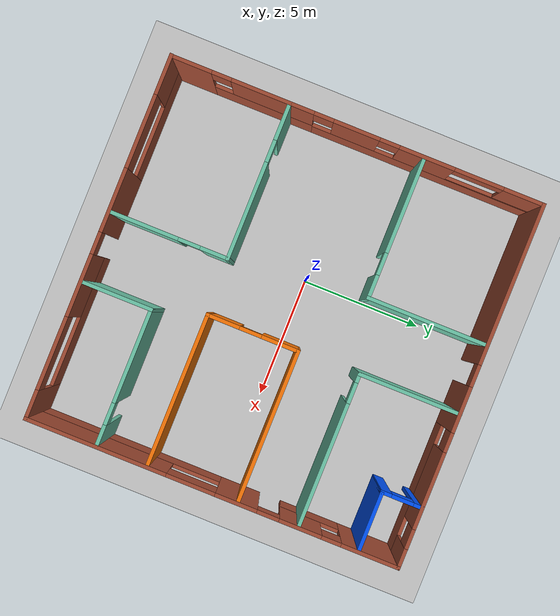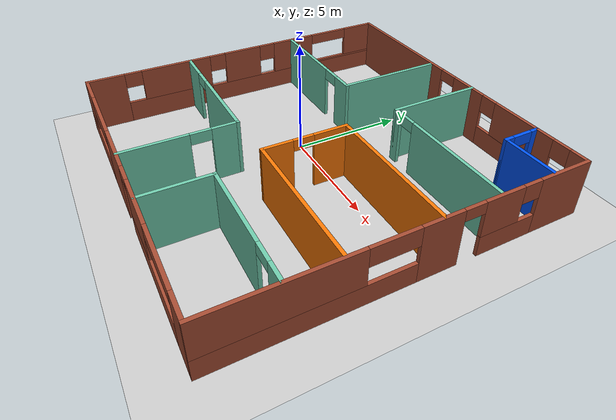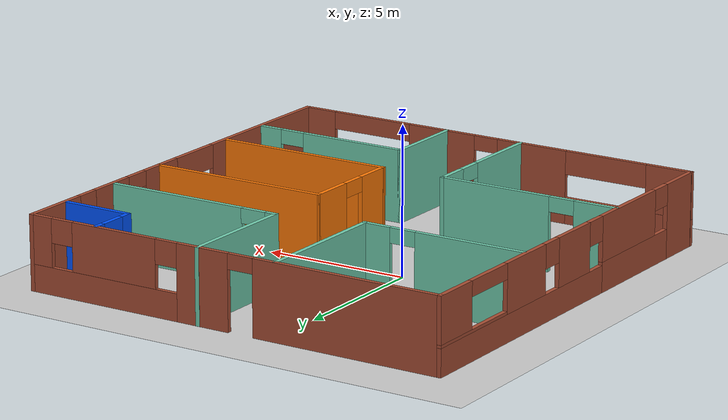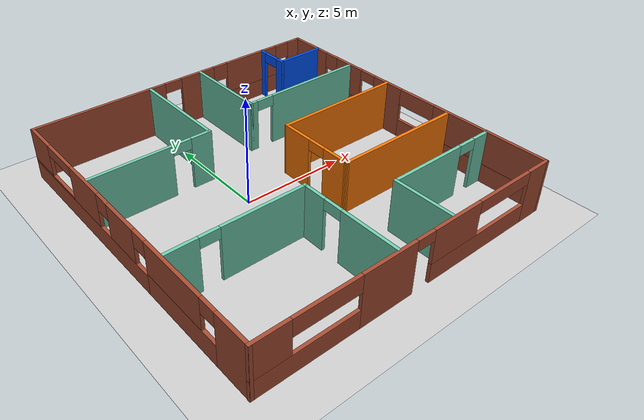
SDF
<sdf version="1.6">
 <world name="default">
  <model name="ground_plane">
   <static>1</static>
   <link name="link">
    <collision name="collision">
     <geometry><plane><normal>0 0 1</normal><size>100 100</size></plane></geometry>
     <surface><friction><ode><mu>100</mu><mu2>50</mu2></ode></friction></surface>
    </collision>
    <visual name="visual">
     <cast_shadows>0</cast_shadows>
     <geometry><plane><normal>0 0 1</normal><size>100 100</size></plane></geometry>
     <material>
      <script><uri>file://media/materials/scripts/gazebo.material</uri><name>Gazebo/Grey</name></script>
     </material>
    </visual>
   </link>
  </model>
  <model name="brickhouse">
   <pose>1.50992 -0.314874 0 0 -0 0</pose>
   <link name="Wall_18">
    <pose>-0.025 7.62202 0 0 -0 0</pose>
    <visual name="Wall_18_Visual_0">
     <pose>-4.1928 0 1.25 0 -0 0</pose>
     <geometry><box><size>6.6144 0.15 2.5</size></box></geometry>
     <material>
      <script><uri>file://media/materials/scripts/gazebo.material</uri><name>Gazebo/Bricks</name></script>
      <ambient>0.666667 0 0 1</ambient>
     </material>
     <meta><layer>0</layer></meta>
    </visual>
    <collision name="Wall_18_Collision_0">
     <geometry><box><size>6.6144 0.15 2.5</size></box></geometry>
     <pose>-4.1928 0 1.25 0 -0 0</pose>
    </collision>
    <visual name="Wall_18_Visual_1">
     <pose>0.9547 0 1.25 0 -0 0</pose>
     <geometry><box><size>1.8806 0.15 2.5</size></box></geometry>
     <material>
      <script><uri>file://media/materials/scripts/gazebo.material</uri><name>Gazebo/Bricks</name></script>
      <ambient>0.666667 0 0 1</ambient>
     </material>
     <meta><layer>0</layer></meta>
    </visual>
    <collision name="Wall_18_Collision_1">
     <geometry><box><size>1.8806 0.15 2.5</size></box></geometry>
     <pose>0.9547 0 1.25 0 -0 0</pose>
    </collision>
    <visual name="Wall_18_Visual_2">
     <pose>4.6975 0 0.45 0 -0 0</pose>
     <geometry><box><size>5.605 0.15 0.9</size></box></geometry>
     <material>
      <script><uri>file://media/materials/scripts/gazebo.material</uri><name>Gazebo/Bricks</name></script>
      <ambient>0.666667 0 0 1</ambient>
     </material>
     <meta><layer>0</layer></meta>
    </visual>
    <collision name="Wall_18_Collision_2">
     <geometry><box><size>5.605 0.15 0.9</size></box></geometry>
     <pose>4.6975 0 0.45 0 -0 0</pose>
    </collision>
    <visual name="Wall_18_Visual_3">
     <pose>4.27 0 1.7 0 -0 0</pose>
     <geometry><box><size>3.15 0.15 1.6</size></box></geometry>
     <material>
      <script><uri>file://media/materials/scripts/gazebo.material</uri><name>Gazebo/Bricks</name></script>
      <ambient>0.666667 0 0 1</ambient>
     </material>
     <meta><layer>0</layer></meta>
    </visual>
    <collision name="Wall_18_Collision_3">
     <geometry><box><size>3.15 0.15 1.6</size></box></geometry>
     <pose>4.27 0 1.7 0 -0 0</pose>
    </collision>
    <visual name="Wall_18_Visual_4">
     <pose>7.0725 0 1.7 0 -0 0</pose>
     <geometry><box><size>0.855 0.15 1.6</size></box></geometry>
     <material>
      <script><uri>file://media/materials/scripts/gazebo.material</uri><name>Gazebo/Bricks</name></script>
      <ambient>0.666667 0 0 1</ambient>
     </material>
     <meta><layer>0</layer></meta>
    </visual>
    <collision name="Wall_18_Collision_4">
     <geometry><box><size>0.855 0.15 1.6</size></box></geometry>
     <pose>7.0725 0 1.7 0 -0 0</pose>
    </collision>
    <visual name="Wall_18_Visual_5">
     <pose>2.295 0 2.1 0 -0 0</pose>
     <geometry><box><size>0.8 0.15 0.8</size></box></geometry>
     <material>
      <script><uri>file://media/materials/scripts/gazebo.material</uri><name>Gazebo/Bricks</name></script>
      <ambient>0.666667 0 0 1</ambient>
     </material>
     <meta><layer>0</layer></meta>
    </visual>
    <collision name="Wall_18_Collision_5">
     <geometry><box><size>0.8 0.15 0.8</size></box></geometry>
     <pose>2.295 0 2.1 0 -0 0</pose>
    </collision>
    <visual name="Wall_18_Visual_6">
     <pose>6.245 0 2.1 0 -0 0</pose>
     <geometry><box><size>0.8 0.15 0.8</size></box></geometry>
     <material>
      <script><uri>file://media/materials/scripts/gazebo.material</uri><name>Gazebo/Bricks</name></script>
      <ambient>0.666667 0 0 1</ambient>
     </material>
     <meta><layer>0</layer></meta>
    </visual>
    <collision name="Wall_18_Collision_6">
     <geometry><box><size>0.8 0.15 0.8</size></box></geometry>
     <pose>6.245 0 2.1 0 -0 0</pose>
    </collision>
    <visual name="Wall_18_Visual_7">
     <pose>-0.4356 0 2.25 0 -0 0</pose>
     <geometry><box><size>0.9 0.15 0.5</size></box></geometry>
     <material>
      <script><uri>file://media/materials/scripts/gazebo.material</uri><name>Gazebo/Bricks</name></script>
      <ambient>0.666667 0 0 1</ambient>
     </material>
     <meta><layer>0</layer></meta>
    </visual>
    <collision name="Wall_18_Collision_7">
     <geometry><box><size>0.9 0.15 0.5</size></box></geometry>
     <pose>-0.4356 0 2.25 0 -0 0</pose>
    </collision>
   </link>
   <link name="Wall_19">
    <pose>7.4 -0.001479 0 0 0 -1.5708</pose>
    <visual name="Wall_19_Visual_0">
     <pose>-6.48752 0 1.25 0 -0 0</pose>
     <geometry><box><size>2.42204 0.15 2.5</size></box></geometry>
     <material>
      <script><uri>file://media/materials/scripts/gazebo.material</uri><name>Gazebo/Bricks</name></script>
      <ambient>0.666667 0 0 1</ambient>
     </material>
     <meta><layer>0</layer></meta>
    </visual>
    <collision name="Wall_19_Collision_0">
     <geometry><box><size>2.42204 0.15 2.5</size></box></geometry>
     <pose>-6.48752 0 1.25 0 -0 0</pose>
    </collision>
    <visual name="Wall_19_Visual_1">
     <pose>-0.9765 0 1.25 0 -0 0</pose>
     <geometry><box><size>1.72 0.15 2.5</size></box></geometry>
     <material>
      <script><uri>file://media/materials/scripts/gazebo.material</uri><name>Gazebo/Bricks</name></script>
      <ambient>0.666667 0 0 1</ambient>
     </material>
     <meta><layer>0</layer></meta>
    </visual>
    <collision name="Wall_19_Collision_1">
     <geometry><box><size>1.72 0.15 2.5</size></box></geometry>
     <pose>-0.9765 0 1.25 0 -0 0</pose>
    </collision>
    <visual name="Wall_19_Visual_2">
     <pose>-4.0065 0 0.45 0 -0 0</pose>
     <geometry><box><size>2.54 0.15 0.9</size></box></geometry>
     <material>
      <script><uri>file://media/materials/scripts/gazebo.material</uri><name>Gazebo/Bricks</name></script>
      <ambient>0.666667 0 0 1</ambient>
     </material>
     <meta><layer>0</layer></meta>
    </visual>
    <collision name="Wall_19_Collision_2">
     <geometry><box><size>2.54 0.15 0.9</size></box></geometry>
     <pose>-4.0065 0 0.45 0 -0 0</pose>
    </collision>
    <visual name="Wall_19_Visual_3">
     <pose>3.79102 0 0.45 0 -0 0</pose>
     <geometry><box><size>7.81504 0.15 0.9</size></box></geometry>
     <material>
      <script><uri>file://media/materials/scripts/gazebo.material</uri><name>Gazebo/Bricks</name></script>
      <ambient>0.666667 0 0 1</ambient>
     </material>
     <meta><layer>0</layer></meta>
    </visual>
    <collision name="Wall_19_Collision_3">
     <geometry><box><size>7.81504 0.15 0.9</size></box></geometry>
     <pose>3.79102 0 0.45 0 -0 0</pose>
    </collision>
    <visual name="Wall_19_Visual_4">
     <pose>-3.6065 0 1.7 0 -0 0</pose>
     <geometry><box><size>1.74 0.15 1.6</size></box></geometry>
     <material>
      <script><uri>file://media/materials/scripts/gazebo.material</uri><name>Gazebo/Bricks</name></script>
      <ambient>0.666667 0 0 1</ambient>
     </material>
     <meta><layer>0</layer></meta>
    </visual>
    <collision name="Wall_19_Collision_4">
     <geometry><box><size>1.74 0.15 1.6</size></box></geometry>
     <pose>-3.6065 0 1.7 0 -0 0</pose>
    </collision>
    <visual name="Wall_19_Visual_5">
     <pose>-3.6065 0 1.7 0 -0 0</pose>
     <geometry><box><size>1.74 0.15 1.6</size></box></geometry>
     <material>
      <script><uri>file://media/materials/scripts/gazebo.material</uri><name>Gazebo/Bricks</name></script>
      <ambient>0.666667 0 0 1</ambient>
     </material>
     <meta><layer>0</layer></meta>
    </visual>
    <collision name="Wall_19_Collision_5">
     <geometry><box><size>1.74 0.15 1.6</size></box></geometry>
     <pose>-3.6065 0 1.7 0 -0 0</pose>
    </collision>
    <visual name="Wall_19_Visual_6">
     <pose>4.79102 0 1.7 0 -0 0</pose>
     <geometry><box><size>5.81504 0.15 1.6</size></box></geometry>
     <material>
      <script><uri>file://media/materials/scripts/gazebo.material</uri><name>Gazebo/Bricks</name></script>
      <ambient>0.666667 0 0 1</ambient>
     </material>
     <meta><layer>0</layer></meta>
    </visual>
    <collision name="Wall_19_Collision_6">
     <geometry><box><size>5.81504 0.15 1.6</size></box></geometry>
     <pose>4.79102 0 1.7 0 -0 0</pose>
    </collision>
    <visual name="Wall_19_Visual_7">
     <pose>-4.8765 0 2.1 0 -0 0</pose>
     <geometry><box><size>0.8 0.15 0.8</size></box></geometry>
     <material>
      <script><uri>file://media/materials/scripts/gazebo.material</uri><name>Gazebo/Bricks</name></script>
      <ambient>0.666667 0 0 1</ambient>
     </material>
     <meta><layer>0</layer></meta>
    </visual>
    <collision name="Wall_19_Collision_7">
     <geometry><box><size>0.8 0.15 0.8</size></box></geometry>
     <pose>-4.8765 0 2.1 0 -0 0</pose>
    </collision>
    <visual name="Wall_19_Visual_8">
     <pose>0.8835 0 2.1 0 -0 0</pose>
     <geometry><box><size>2 0.15 0.8</size></box></geometry>
     <material>
      <script><uri>file://media/materials/scripts/gazebo.material</uri><name>Gazebo/Bricks</name></script>
      <ambient>0.666667 0 0 1</ambient>
     </material>
     <meta><layer>0</layer></meta>
    </visual>
    <collision name="Wall_19_Collision_8">
     <geometry><box><size>2 0.15 0.8</size></box></geometry>
     <pose>0.8835 0 2.1 0 -0 0</pose>
    </collision>
    <visual name="Wall_19_Visual_9">
     <pose>-2.2865 0 2.25 0 -0 0</pose>
     <geometry><box><size>0.9 0.15 0.5</size></box></geometry>
     <material>
      <script><uri>file://media/materials/scripts/gazebo.material</uri><name>Gazebo/Bricks</name></script>
      <ambient>0.666667 0 0 1</ambient>
     </material>
     <meta><layer>0</layer></meta>
    </visual>
    <collision name="Wall_19_Collision_9">
     <geometry><box><size>0.9 0.15 0.5</size></box></geometry>
     <pose>-2.2865 0 2.25 0 -0 0</pose>
    </collision>
    <visual name="Wall_19_Visual_10">
     <pose>-2.2865 0 2.25 0 -0 0</pose>
     <geometry><box><size>0.9 0.15 0.5</size></box></geometry>
     <material>
      <script><uri>file://media/materials/scripts/gazebo.material</uri><name>Gazebo/Bricks</name></script>
      <ambient>0.666667 0 0 1</ambient>
     </material>
     <meta><layer>0</layer></meta>
    </visual>
    <collision name="Wall_19_Collision_10">
     <geometry><box><size>0.9 0.15 0.5</size></box></geometry>
     <pose>-2.2865 0 2.25 0 -0 0</pose>
    </collision>
   </link>
   <link name="Wall_20">
    <pose>-0.035 -7.62498 0 0 -0 3.14159</pose>
    <visual name="Wall_20_Visual_0">
     <pose>-6.8775 0 1.25 0 -0 0</pose>
     <geometry><box><size>1.245 0.15 2.5</size></box></geometry>
     <material>
      <script><uri>file://media/materials/scripts/gazebo.material</uri><name>Gazebo/Bricks</name></script>
      <ambient>0.666667 0 0 1</ambient>
     </material>
     <meta><layer>0</layer></meta>
    </visual>
    <collision name="Wall_20_Collision_0">
     <geometry><box><size>1.245 0.15 2.5</size></box></geometry>
     <pose>-6.8775 0 1.25 0 -0 0</pose>
    </collision>
    <visual name="Wall_20_Visual_1">
     <pose>1.515 0 1.25 0 -0 0</pose>
     <geometry><box><size>2.62 0.15 2.5</size></box></geometry>
     <material>
      <script><uri>file://media/materials/scripts/gazebo.material</uri><name>Gazebo/Bricks</name></script>
      <ambient>0.666667 0 0 1</ambient>
     </material>
     <meta><layer>0</layer></meta>
    </visual>
    <collision name="Wall_20_Collision_1">
     <geometry><box><size>2.62 0.15 2.5</size></box></geometry>
     <pose>1.515 0 1.25 0 -0 0</pose>
    </collision>
    <visual name="Wall_20_Visual_2">
     <pose>-3.475 0 0.45 0 -0 0</pose>
     <geometry><box><size>5.56 0.15 0.9</size></box></geometry>
     <material>
      <script><uri>file://media/materials/scripts/gazebo.material</uri><name>Gazebo/Bricks</name></script>
      <ambient>0.666667 0 0 1</ambient>
     </material>
     <meta><layer>0</layer></meta>
    </visual>
    <collision name="Wall_20_Collision_2">
     <geometry><box><size>5.56 0.15 0.9</size></box></geometry>
     <pose>-3.475 0 0.45 0 -0 0</pose>
    </collision>
    <visual name="Wall_20_Visual_3">
     <pose>5.1625 0 0.45 0 -0 0</pose>
     <geometry><box><size>4.675 0.15 0.9</size></box></geometry>
     <material>
      <script><uri>file://media/materials/scripts/gazebo.material</uri><name>Gazebo/Bricks</name></script>
      <ambient>0.666667 0 0 1</ambient>
     </material>
     <meta><layer>0</layer></meta>
    </visual>
    <collision name="Wall_20_Collision_3">
     <geometry><box><size>4.675 0.15 0.9</size></box></geometry>
     <pose>5.1625 0 0.45 0 -0 0</pose>
    </collision>
    <visual name="Wall_20_Visual_4">
     <pose>-1.975 0 1.7 0 -0 0</pose>
     <geometry><box><size>2.56 0.15 1.6</size></box></geometry>
     <material>
      <script><uri>file://media/materials/scripts/gazebo.material</uri><name>Gazebo/Bricks</name></script>
      <ambient>0.666667 0 0 1</ambient>
     </material>
     <meta><layer>0</layer></meta>
    </visual>
    <collision name="Wall_20_Collision_4">
     <geometry><box><size>2.56 0.15 1.6</size></box></geometry>
     <pose>-1.975 0 1.7 0 -0 0</pose>
    </collision>
    <visual name="Wall_20_Visual_5">
     <pose>-1.975 0 1.7 0 -0 0</pose>
     <geometry><box><size>2.56 0.15 1.6</size></box></geometry>
     <material>
      <script><uri>file://media/materials/scripts/gazebo.material</uri><name>Gazebo/Bricks</name></script>
      <ambient>0.666667 0 0 1</ambient>
     </material>
     <meta><layer>0</layer></meta>
    </visual>
    <collision name="Wall_20_Collision_5">
     <geometry><box><size>2.56 0.15 1.6</size></box></geometry>
     <pose>-1.975 0 1.7 0 -0 0</pose>
    </collision>
    <visual name="Wall_20_Visual_6">
     <pose>6.6625 0 1.7 0 -0 0</pose>
     <geometry><box><size>1.675 0.15 1.6</size></box></geometry>
     <material>
      <script><uri>file://media/materials/scripts/gazebo.material</uri><name>Gazebo/Bricks</name></script>
      <ambient>0.666667 0 0 1</ambient>
     </material>
     <meta><layer>0</layer></meta>
    </visual>
    <collision name="Wall_20_Collision_6">
     <geometry><box><size>1.675 0.15 1.6</size></box></geometry>
     <pose>6.6625 0 1.7 0 -0 0</pose>
    </collision>
    <visual name="Wall_20_Visual_7">
     <pose>4.325 0 2.1 0 -0 0</pose>
     <geometry><box><size>3 0.15 0.8</size></box></geometry>
     <material>
      <script><uri>file://media/materials/scripts/gazebo.material</uri><name>Gazebo/Bricks</name></script>
      <ambient>0.666667 0 0 1</ambient>
     </material>
     <meta><layer>0</layer></meta>
    </visual>
    <collision name="Wall_20_Collision_7">
     <geometry><box><size>3 0.15 0.8</size></box></geometry>
     <pose>4.325 0 2.1 0 -0 0</pose>
    </collision>
    <visual name="Wall_20_Visual_8">
     <pose>-4.755 0 2.2 0 -0 0</pose>
     <geometry><box><size>3 0.15 0.6</size></box></geometry>
     <material>
      <script><uri>file://media/materials/scripts/gazebo.material</uri><name>Gazebo/Bricks</name></script>
      <ambient>0.666667 0 0 1</ambient>
     </material>
     <meta><layer>0</layer></meta>
    </visual>
    <collision name="Wall_20_Collision_8">
     <geometry><box><size>3 0.15 0.6</size></box></geometry>
     <pose>-4.755 0 2.2 0 -0 0</pose>
    </collision>
    <visual name="Wall_20_Visual_9">
     <pose>-0.245 0 2.25 0 -0 0</pose>
     <geometry><box><size>0.9 0.15 0.5</size></box></geometry>
     <material>
      <script><uri>file://media/materials/scripts/gazebo.material</uri><name>Gazebo/Bricks</name></script>
      <ambient>0.666667 0 0 1</ambient>
     </material>
     <meta><layer>0</layer></meta>
    </visual>
    <collision name="Wall_20_Collision_9">
     <geometry><box><size>0.9 0.15 0.5</size></box></geometry>
     <pose>-0.245 0 2.25 0 -0 0</pose>
    </collision>
    <visual name="Wall_20_Visual_10">
     <pose>-0.245 0 2.25 0 -0 0</pose>
     <geometry><box><size>0.9 0.15 0.5</size></box></geometry>
     <material>
      <script><uri>file://media/materials/scripts/gazebo.material</uri><name>Gazebo/Bricks</name></script>
      <ambient>0.666667 0 0 1</ambient>
     </material>
     <meta><layer>0</layer></meta>
    </visual>
    <collision name="Wall_20_Collision_10">
     <geometry><box><size>0.9 0.15 0.5</size></box></geometry>
     <pose>-0.245 0 2.25 0 -0 0</pose>
    </collision>
   </link>
   <link name="Wall_21">
    <pose>-7.45 -0.001479 0 0 -0 1.5708</pose>
    <visual name="Wall_21_Visual_0">
     <pose>-6.82602 0 1.25 0 -0 0</pose>
     <geometry><box><size>1.74504 0.15 2.5</size></box></geometry>
     <material>
      <script><uri>file://media/materials/scripts/gazebo.material</uri><name>Gazebo/Bricks</name></script>
      <ambient>0.666667 0 0 1</ambient>
     </material>
     <meta><layer>0</layer></meta>
    </visual>
    <collision name="Wall_21_Collision_0">
     <geometry><box><size>1.74504 0.15 2.5</size></box></geometry>
     <pose>-6.82602 0 1.25 0 -0 0</pose>
    </collision>
    <visual name="Wall_21_Visual_1">
     <pose>-3.8585 0 0.5 0 -0 0</pose>
     <geometry><box><size>4.19 0.15 1</size></box></geometry>
     <material>
      <script><uri>file://media/materials/scripts/gazebo.material</uri><name>Gazebo/Bricks</name></script>
      <ambient>0.666667 0 0 1</ambient>
     </material>
     <meta><layer>0</layer></meta>
    </visual>
    <collision name="Wall_21_Collision_1">
     <geometry><box><size>4.19 0.15 1</size></box></geometry>
     <pose>-3.8585 0 0.5 0 -0 0</pose>
    </collision>
    <visual name="Wall_21_Visual_2">
     <pose>2.96752 0 0.45 0 -0 0</pose>
     <geometry><box><size>9.46204 0.15 0.9</size></box></geometry>
     <material>
      <script><uri>file://media/materials/scripts/gazebo.material</uri><name>Gazebo/Bricks</name></script>
      <ambient>0.666667 0 0 1</ambient>
     </material>
     <meta><layer>0</layer></meta>
    </visual>
    <collision name="Wall_21_Collision_2">
     <geometry><box><size>9.46204 0.15 0.9</size></box></geometry>
     <pose>2.96752 0 0.45 0 -0 0</pose>
    </collision>
    <visual name="Wall_21_Visual_3">
     <pose>-0.0185 0 1.7 0 -0 0</pose>
     <geometry><box><size>1.89 0.15 1.6</size></box></geometry>
     <material>
      <script><uri>file://media/materials/scripts/gazebo.material</uri><name>Gazebo/Bricks</name></script>
      <ambient>0.666667 0 0 1</ambient>
     </material>
     <meta><layer>0</layer></meta>
    </visual>
    <collision name="Wall_21_Collision_3">
     <geometry><box><size>1.89 0.15 1.6</size></box></geometry>
     <pose>-0.0185 0 1.7 0 -0 0</pose>
    </collision>
    <visual name="Wall_21_Visual_4">
     <pose>2.8565 0 1.7 0 -0 0</pose>
     <geometry><box><size>2.26 0.15 1.6</size></box></geometry>
     <material>
      <script><uri>file://media/materials/scripts/gazebo.material</uri><name>Gazebo/Bricks</name></script>
      <ambient>0.666667 0 0 1</ambient>
     </material>
     <meta><layer>0</layer></meta>
    </visual>
    <collision name="Wall_21_Collision_4">
     <geometry><box><size>2.26 0.15 1.6</size></box></geometry>
     <pose>2.8565 0 1.7 0 -0 0</pose>
    </collision>
    <visual name="Wall_21_Visual_5">
     <pose>5.84252 0 0.95 0 -0 0</pose>
     <geometry><box><size>3.71204 0.15 0.1</size></box></geometry>
     <material>
      <script><uri>file://media/materials/scripts/gazebo.material</uri><name>Gazebo/Bricks</name></script>
      <ambient>0.666667 0 0 1</ambient>
     </material>
     <meta><layer>0</layer></meta>
    </visual>
    <collision name="Wall_21_Collision_5">
     <geometry><box><size>3.71204 0.15 0.1</size></box></geometry>
     <pose>5.84252 0 0.95 0 -0 0</pose>
    </collision>
    <visual name="Wall_21_Visual_6">
     <pose>6.84252 0 1.75 0 -0 0</pose>
     <geometry><box><size>1.71204 0.15 1.5</size></box></geometry>
     <material>
      <script><uri>file://media/materials/scripts/gazebo.material</uri><name>Gazebo/Bricks</name></script>
      <ambient>0.666667 0 0 1</ambient>
     </material>
     <meta><layer>0</layer></meta>
    </visual>
    <collision name="Wall_21_Collision_6">
     <geometry><box><size>1.71204 0.15 1.5</size></box></geometry>
     <pose>6.84252 0 1.75 0 -0 0</pose>
    </collision>
    <visual name="Wall_21_Visual_7">
     <pose>-3.4585 0 1.75 0 -0 0</pose>
     <geometry><box><size>3.39 0.15 1.5</size></box></geometry>
     <material>
      <script><uri>file://media/materials/scripts/gazebo.material</uri><name>Gazebo/Bricks</name></script>
      <ambient>0.666667 0 0 1</ambient>
     </material>
     <meta><layer>0</layer></meta>
    </visual>
    <collision name="Wall_21_Collision_7">
     <geometry><box><size>3.39 0.15 1.5</size></box></geometry>
     <pose>-3.4585 0 1.75 0 -0 0</pose>
    </collision>
    <visual name="Wall_21_Visual_8">
     <pose>-3.4585 0 1.75 0 -0 0</pose>
     <geometry><box><size>3.39 0.15 1.5</size></box></geometry>
     <material>
      <script><uri>file://media/materials/scripts/gazebo.material</uri><name>Gazebo/Bricks</name></script>
      <ambient>0.666667 0 0 1</ambient>
     </material>
     <meta><layer>0</layer></meta>
    </visual>
    <collision name="Wall_21_Collision_8">
     <geometry><box><size>3.39 0.15 1.5</size></box></geometry>
     <pose>-3.4585 0 1.75 0 -0 0</pose>
    </collision>
    <visual name="Wall_21_Visual_9">
     <pose>1.3265 0 2.1 0 -0 0</pose>
     <geometry><box><size>0.8 0.15 0.8</size></box></geometry>
     <material>
      <script><uri>file://media/materials/scripts/gazebo.material</uri><name>Gazebo/Bricks</name></script>
      <ambient>0.666667 0 0 1</ambient>
     </material>
     <meta><layer>0</layer></meta>
    </visual>
    <collision name="Wall_21_Collision_9">
     <geometry><box><size>0.8 0.15 0.8</size></box></geometry>
     <pose>1.3265 0 2.1 0 -0 0</pose>
    </collision>
    <visual name="Wall_21_Visual_10">
     <pose>-1.3635 0 2.1 0 -0 0</pose>
     <geometry><box><size>0.8 0.15 0.8</size></box></geometry>
     <material>
      <script><uri>file://media/materials/scripts/gazebo.material</uri><name>Gazebo/Bricks</name></script>
      <ambient>0.666667 0 0 1</ambient>
     </material>
     <meta><layer>0</layer></meta>
    </visual>
    <collision name="Wall_21_Collision_10">
     <geometry><box><size>0.8 0.15 0.8</size></box></geometry>
     <pose>-1.3635 0 2.1 0 -0 0</pose>
    </collision>
    <visual name="Wall_21_Visual_11">
     <pose>-1.3635 0 2.1 0 -0 0</pose>
     <geometry><box><size>0.8 0.15 0.8</size></box></geometry>
     <material>
      <script><uri>file://media/materials/scripts/gazebo.material</uri><name>Gazebo/Bricks</name></script>
      <ambient>0.666667 0 0 1</ambient>
     </material>
     <meta><layer>0</layer></meta>
    </visual>
    <collision name="Wall_21_Collision_11">
     <geometry><box><size>0.8 0.15 0.8</size></box></geometry>
     <pose>-1.3635 0 2.1 0 -0 0</pose>
    </collision>
    <visual name="Wall_21_Visual_12">
     <pose>-5.5535 0 2.15 0 -0 0</pose>
     <geometry><box><size>0.8 0.15 0.7</size></box></geometry>
     <material>
      <script><uri>file://media/materials/scripts/gazebo.material</uri><name>Gazebo/Bricks</name></script>
      <ambient>0.666667 0 0 1</ambient>
     </material>
     <meta><layer>0</layer></meta>
    </visual>
    <collision name="Wall_21_Collision_12">
     <geometry><box><size>0.8 0.15 0.7</size></box></geometry>
     <pose>-5.5535 0 2.15 0 -0 0</pose>
    </collision>
    <visual name="Wall_21_Visual_13">
     <pose>4.9865 0 2.25 0 -0 0</pose>
     <geometry><box><size>2 0.15 0.5</size></box></geometry>
     <material>
      <script><uri>file://media/materials/scripts/gazebo.material</uri><name>Gazebo/Bricks</name></script>
      <ambient>0.666667 0 0 1</ambient>
     </material>
     <meta><layer>0</layer></meta>
    </visual>
    <collision name="Wall_21_Collision_13">
     <geometry><box><size>2 0.15 0.5</size></box></geometry>
     <pose>4.9865 0 2.25 0 -0 0</pose>
    </collision>
   </link>
   <link name="Wall_23">
    <collision name="Wall_23_Collision">
     <geometry><box><size>4.25 0.15 2.5</size></box></geometry>
     <pose>0 0 1.25 0 -0 0</pose>
    </collision>
    <visual name="Wall_23_Visual">
     <pose>0 0 1.25 0 -0 0</pose>
     <geometry><box><size>4.25 0.15 2.5</size></box></geometry>
     <material>
      <script><uri>file://media/materials/scripts/gazebo.material</uri><name>Gazebo/Grey</name></script>
      <ambient>0.435294 0.796078 0.67451 1</ambient>
     </material>
     <meta><layer>0</layer></meta>
    </visual>
    <pose>1.11 5.57502 0 0 0 -1.5708</pose>
   </link>
   <link name="Wall_24">
    <pose>4.285 3.52502 0 0 -0 0</pose>
    <visual name="Wall_24_Visual_0">
     <pose>-3.0375 0 1.25 0 -0 0</pose>
     <geometry><box><size>0.425 0.15 2.5</size></box></geometry>
     <material>
      <script><uri>file://media/materials/scripts/gazebo.material</uri><name>Gazebo/Grey</name></script>
      <ambient>0.435294 0.796078 0.67451 1</ambient>
     </material>
     <meta><layer>0</layer></meta>
    </visual>
    <collision name="Wall_24_Collision_0">
     <geometry><box><size>0.425 0.15 2.5</size></box></geometry>
     <pose>-3.0375 0 1.25 0 -0 0</pose>
    </collision>
    <visual name="Wall_24_Visual_1">
     <pose>0.5625 0 1.25 0 -0 0</pose>
     <geometry><box><size>5.075 0.15 2.5</size></box></geometry>
     <material>
      <script><uri>file://media/materials/scripts/gazebo.material</uri><name>Gazebo/Grey</name></script>
      <ambient>0.435294 0.796078 0.67451 1</ambient>
     </material>
     <meta><layer>0</layer></meta>
    </visual>
    <collision name="Wall_24_Collision_1">
     <geometry><box><size>5.075 0.15 2.5</size></box></geometry>
     <pose>0.5625 0 1.25 0 -0 0</pose>
    </collision>
    <visual name="Wall_24_Visual_2">
     <pose>-2.375 0 2.25 0 -0 0</pose>
     <geometry><box><size>0.9 0.15 0.5</size></box></geometry>
     <material>
      <script><uri>file://media/materials/scripts/gazebo.material</uri><name>Gazebo/Grey</name></script>
      <ambient>0.435294 0.796078 0.67451 1</ambient>
     </material>
     <meta><layer>0</layer></meta>
    </visual>
    <collision name="Wall_24_Collision_2">
     <geometry><box><size>0.9 0.15 0.5</size></box></geometry>
     <pose>-2.375 0 2.25 0 -0 0</pose>
    </collision>
   </link>
   <link name="Wall_26">
    <pose>4.95 6.78502 0 0 0 -1.5708</pose>
    <visual name="Wall_26_Visual_0">
     <pose>-0.6775 0 1.25 0 -0 0</pose>
     <geometry><box><size>0.395 0.15 2.5</size></box></geometry>
     <material>
      <script><uri>file://media/materials/scripts/gazebo.material</uri><name>Gazebo/Grey</name></script>
      <ambient>0 0.333333 1 1</ambient>
     </material>
     <meta><layer>0</layer></meta>
    </visual>
    <collision name="Wall_26_Collision_0">
     <geometry><box><size>0.395 0.15 2.5</size></box></geometry>
     <pose>-0.6775 0 1.25 0 -0 0</pose>
    </collision>
    <visual name="Wall_26_Visual_1">
     <pose>0.6475 0 1.25 0 -0 0</pose>
     <geometry><box><size>0.455 0.15 2.5</size></box></geometry>
     <material>
      <script><uri>file://media/materials/scripts/gazebo.material</uri><name>Gazebo/Grey</name></script>
      <ambient>0 0.333333 1 1</ambient>
     </material>
     <meta><layer>0</layer></meta>
    </visual>
    <collision name="Wall_26_Collision_1">
     <geometry><box><size>0.455 0.15 2.5</size></box></geometry>
     <pose>0.6475 0 1.25 0 -0 0</pose>
    </collision>
    <visual name="Wall_26_Visual_2">
     <pose>-0.03 0 2.25 0 -0 0</pose>
     <geometry><box><size>0.9 0.15 0.5</size></box></geometry>
     <material>
      <script><uri>file://media/materials/scripts/gazebo.material</uri><name>Gazebo/Grey</name></script>
      <ambient>0 0.333333 1 1</ambient>
     </material>
     <meta><layer>0</layer></meta>
    </visual>
    <collision name="Wall_26_Collision_2">
     <geometry><box><size>0.9 0.15 0.5</size></box></geometry>
     <pose>-0.03 0 2.25 0 -0 0</pose>
    </collision>
   </link>
   <link name="Wall_27">
    <collision name="Wall_27_Collision">
     <geometry><box><size>2.51 0.15 2.5</size></box></geometry>
     <pose>0 0 1.25 0 -0 0</pose>
    </collision>
    <visual name="Wall_27_Visual">
     <pose>0 0 1.25 0 -0 0</pose>
     <geometry><box><size>2.51 0.15 2.5</size></box></geometry>
     <material>
      <script><uri>file://media/materials/scripts/gazebo.material</uri><name>Gazebo/Grey</name></script>
      <ambient>0 0.333333 1 1</ambient>
     </material>
     <meta><layer>0</layer></meta>
    </visual>
    <pose>6.19 5.98502 0 0 -0 0</pose>
   </link>
   <link name="Wall_29">
    <collision name="Wall_29_Collision">
     <geometry><box><size>3 0.15 2.5</size></box></geometry>
     <pose>0 0 1.25 0 -0 0</pose>
    </collision>
    <visual name="Wall_29_Visual">
     <pose>0 0 1.25 0 -0 0</pose>
     <geometry><box><size>3 0.15 2.5</size></box></geometry>
     <material>
      <script><uri>file://media/materials/scripts/gazebo.material</uri><name>Gazebo/Grey</name></script>
      <ambient>0.435294 0.796078 0.67451 1</ambient>
     </material>
     <meta><layer>0</layer></meta>
    </visual>
    <pose>1.78 -6.16998 0 0 -0 1.5708</pose>
   </link>
   <link name="Wall_30">
    <pose>4.58 -4.74498 0 0 -0 0</pose>
    <visual name="Wall_30_Visual_0">
     <pose>-0.9275 0 1.25 0 -0 0</pose>
     <geometry><box><size>3.895 0.15 2.5</size></box></geometry>
     <material>
      <script><uri>file://media/materials/scripts/gazebo.material</uri><name>Gazebo/Grey</name></script>
      <ambient>0.435294 0.796078 0.67451 1</ambient>
     </material>
     <meta><layer>0</layer></meta>
    </visual>
    <collision name="Wall_30_Collision_0">
     <geometry><box><size>3.895 0.15 2.5</size></box></geometry>
     <pose>-0.9275 0 1.25 0 -0 0</pose>
    </collision>
    <visual name="Wall_30_Visual_1">
     <pose>2.3975 0 1.25 0 -0 0</pose>
     <geometry><box><size>0.955 0.15 2.5</size></box></geometry>
     <material>
      <script><uri>file://media/materials/scripts/gazebo.material</uri><name>Gazebo/Grey</name></script>
      <ambient>0.435294 0.796078 0.67451 1</ambient>
     </material>
     <meta><layer>0</layer></meta>
    </visual>
    <collision name="Wall_30_Collision_1">
     <geometry><box><size>0.955 0.15 2.5</size></box></geometry>
     <pose>2.3975 0 1.25 0 -0 0</pose>
    </collision>
    <visual name="Wall_30_Visual_2">
     <pose>1.47 0 2.25 0 -0 0</pose>
     <geometry><box><size>0.9 0.15 0.5</size></box></geometry>
     <material>
      <script><uri>file://media/materials/scripts/gazebo.material</uri><name>Gazebo/Grey</name></script>
      <ambient>0.435294 0.796078 0.67451 1</ambient>
     </material>
     <meta><layer>0</layer></meta>
    </visual>
    <collision name="Wall_30_Collision_2">
     <geometry><box><size>0.9 0.15 0.5</size></box></geometry>
     <pose>1.47 0 2.25 0 -0 0</pose>
    </collision>
   </link>
   <link name="Wall_32">
    <collision name="Wall_32_Collision">
     <geometry><box><size>6.25 0.15 2.5</size></box></geometry>
     <pose>0 0 1.25 0 -0 0</pose>
    </collision>
    <visual name="Wall_32_Visual">
     <pose>0 0 1.25 0 -0 0</pose>
     <geometry><box><size>6.25 0.15 2.5</size></box></geometry>
     <material>
      <script><uri>file://media/materials/scripts/gazebo.material</uri><name>Gazebo/Grey</name></script>
      <ambient>0.996078 0.47451 0.0196078 1</ambient>
     </material>
     <meta><layer>0</layer></meta>
    </visual>
    <pose>4.22 -2.67498 0 0 -0 3.14159</pose>
   </link>
   <link name="Wall_33">
    <pose>1.175 -0.819979 0 0 -0 1.5681</pose>
    <visual name="Wall_33_Visual_0">
     <pose>-1.23964 0 1.25 0 -0 0</pose>
     <geometry><box><size>1.38072 0.15 2.5</size></box></geometry>
     <material>
      <script><uri>file://media/materials/scripts/gazebo.material</uri><name>Gazebo/Grey</name></script>
      <ambient>0.996078 0.47451 0.0196078 1</ambient>
     </material>
     <meta><layer>0</layer></meta>
    </visual>
    <collision name="Wall_33_Collision_0">
     <geometry><box><size>1.38072 0.15 2.5</size></box></geometry>
     <pose>-1.23964 0 1.25 0 -0 0</pose>
    </collision>
    <visual name="Wall_33_Visual_1">
     <pose>1.14036 0 1.25 0 -0 0</pose>
     <geometry><box><size>1.57929 0.15 2.5</size></box></geometry>
     <material>
      <script><uri>file://media/materials/scripts/gazebo.material</uri><name>Gazebo/Grey</name></script>
      <ambient>0.996078 0.47451 0.0196078 1</ambient>
     </material>
     <meta><layer>0</layer></meta>
    </visual>
    <collision name="Wall_33_Collision_1">
     <geometry><box><size>1.57929 0.15 2.5</size></box></geometry>
     <pose>1.14036 0 1.25 0 -0 0</pose>
    </collision>
    <visual name="Wall_33_Visual_2">
     <pose>-0.099282 0 2.25 0 -0 0</pose>
     <geometry><box><size>0.9 0.15 0.5</size></box></geometry>
     <material>
      <script><uri>file://media/materials/scripts/gazebo.material</uri><name>Gazebo/Grey</name></script>
      <ambient>0.996078 0.47451 0.0196078 1</ambient>
     </material>
     <meta><layer>0</layer></meta>
    </visual>
    <collision name="Wall_33_Collision_2">
     <geometry><box><size>0.9 0.15 0.5</size></box></geometry>
     <pose>-0.099282 0 2.25 0 -0 0</pose>
    </collision>
   </link>
   <link name="Wall_34">
    <collision name="Wall_34_Collision">
     <geometry><box><size>6.36 0.15 2.5</size></box></geometry>
     <pose>0 0 1.25 0 -0 0</pose>
    </collision>
    <visual name="Wall_34_Visual">
     <pose>0 0 1.25 0 -0 0</pose>
     <geometry><box><size>6.36 0.15 2.5</size></box></geometry>
     <material>
      <script><uri>file://media/materials/scripts/gazebo.material</uri><name>Gazebo/Grey</name></script>
      <ambient>0.996078 0.47451 0.0196078 1</ambient>
     </material>
     <meta><layer>0</layer></meta>
    </visual>
    <pose>4.285 1.03502 0 0 -0 0</pose>
   </link>
   <link name="Wall_38">
    <pose>-1.09 -5.18998 0 0 -0 1.5708</pose>
    <visual name="Wall_38_Visual_0">
     <pose>-1.05018 0 1.25 0 -0 0</pose>
     <geometry><box><size>2.89963 0.15 2.5</size></box></geometry>
     <material>
      <script><uri>file://media/materials/scripts/gazebo.material</uri><name>Gazebo/Grey</name></script>
      <ambient>0.435294 0.796078 0.67451 1</ambient>
     </material>
     <meta><layer>0</layer></meta>
    </visual>
    <collision name="Wall_38_Collision_0">
     <geometry><box><size>2.89963 0.15 2.5</size></box></geometry>
     <pose>-1.05018 0 1.25 0 -0 0</pose>
    </collision>
    <visual name="Wall_38_Visual_1">
     <pose>1.89982 0 1.25 0 -0 0</pose>
     <geometry><box><size>1.20036 0.15 2.5</size></box></geometry>
     <material>
      <script><uri>file://media/materials/scripts/gazebo.material</uri><name>Gazebo/Grey</name></script>
      <ambient>0.435294 0.796078 0.67451 1</ambient>
     </material>
     <meta><layer>0</layer></meta>
    </visual>
    <collision name="Wall_38_Collision_1">
     <geometry><box><size>1.20036 0.15 2.5</size></box></geometry>
     <pose>1.89982 0 1.25 0 -0 0</pose>
    </collision>
    <visual name="Wall_38_Visual_2">
     <pose>0.849635 0 2.25 0 -0 0</pose>
     <geometry><box><size>0.9 0.15 0.5</size></box></geometry>
     <material>
      <script><uri>file://media/materials/scripts/gazebo.material</uri><name>Gazebo/Grey</name></script>
      <ambient>0.435294 0.796078 0.67451 1</ambient>
     </material>
     <meta><layer>0</layer></meta>
    </visual>
    <collision name="Wall_38_Collision_2">
     <geometry><box><size>0.9 0.15 0.5</size></box></geometry>
     <pose>0.849635 0 2.25 0 -0 0</pose>
    </collision>
   </link>
   <link name="Wall_39">
    <pose>-4.26 -2.76498 0 0 -0 3.14159</pose>
    <visual name="Wall_39_Visual_0">
     <pose>-1.23097 0 1.25 0 -0 0</pose>
     <geometry><box><size>4.02806 0.15 2.5</size></box></geometry>
     <material>
      <script><uri>file://media/materials/scripts/gazebo.material</uri><name>Gazebo/Grey</name></script>
      <ambient>0.435294 0.796078 0.67451 1</ambient>
     </material>
     <meta><layer>0</layer></meta>
    </visual>
    <collision name="Wall_39_Collision_0">
     <geometry><box><size>4.02806 0.15 2.5</size></box></geometry>
     <pose>-1.23097 0 1.25 0 -0 0</pose>
    </collision>
    <visual name="Wall_39_Visual_1">
     <pose>2.46403 0 1.25 0 -0 0</pose>
     <geometry><box><size>1.56194 0.15 2.5</size></box></geometry>
     <material>
      <script><uri>file://media/materials/scripts/gazebo.material</uri><name>Gazebo/Grey</name></script>
      <ambient>0.435294 0.796078 0.67451 1</ambient>
     </material>
     <meta><layer>0</layer></meta>
    </visual>
    <collision name="Wall_39_Collision_1">
     <geometry><box><size>1.56194 0.15 2.5</size></box></geometry>
     <pose>2.46403 0 1.25 0 -0 0</pose>
    </collision>
    <visual name="Wall_39_Visual_2">
     <pose>1.23306 0 2.25 0 -0 0</pose>
     <geometry><box><size>0.9 0.15 0.5</size></box></geometry>
     <material>
      <script><uri>file://media/materials/scripts/gazebo.material</uri><name>Gazebo/Grey</name></script>
      <ambient>0.435294 0.796078 0.67451 1</ambient>
     </material>
     <meta><layer>0</layer></meta>
    </visual>
    <collision name="Wall_39_Collision_2">
     <geometry><box><size>0.9 0.15 0.5</size></box></geometry>
     <pose>1.23306 0 2.25 0 -0 0</pose>
    </collision>
   </link>
   <link name="Wall_45">
    <collision name="Wall_45_Collision">
     <geometry><box><size>5 0.15 2.5</size></box></geometry>
     <pose>0 0 1.25 0 -0 0</pose>
    </collision>
    <visual name="Wall_45_Visual">
     <pose>0 0 1.25 0 -0 0</pose>
     <geometry><box><size>5 0.15 2.5</size></box></geometry>
     <material>
      <script><uri>file://media/materials/scripts/gazebo.material</uri><name>Gazebo/Grey</name></script>
      <ambient>0.435294 0.796078 0.67451 1</ambient>
     </material>
     <meta><layer>0</layer></meta>
    </visual>
    <pose>-1.7 5.18002 0 0 0 -1.5708</pose>
   </link>
   <link name="Wall_46">
    <pose>-4.515 2.75502 0 0 -0 3.14159</pose>
    <visual name="Wall_46_Visual_0">
     <pose>-2.3875 0 1.25 0 -0 0</pose>
     <geometry><box><size>1.025 0.15 2.5</size></box></geometry>
     <material>
      <script><uri>file://media/materials/scripts/gazebo.material</uri><name>Gazebo/Grey</name></script>
      <ambient>0.435294 0.796078 0.67451 1</ambient>
     </material>
     <meta><layer>0</layer></meta>
    </visual>
    <collision name="Wall_46_Collision_0">
     <geometry><box><size>1.025 0.15 2.5</size></box></geometry>
     <pose>-2.3875 0 1.25 0 -0 0</pose>
    </collision>
    <visual name="Wall_46_Visual_1">
     <pose>0.9625 0 1.25 0 -0 0</pose>
     <geometry><box><size>3.875 0.15 2.5</size></box></geometry>
     <material>
      <script><uri>file://media/materials/scripts/gazebo.material</uri><name>Gazebo/Grey</name></script>
      <ambient>0.435294 0.796078 0.67451 1</ambient>
     </material>
     <meta><layer>0</layer></meta>
    </visual>
    <collision name="Wall_46_Collision_1">
     <geometry><box><size>3.875 0.15 2.5</size></box></geometry>
     <pose>0.9625 0 1.25 0 -0 0</pose>
    </collision>
    <visual name="Wall_46_Visual_2">
     <pose>-1.425 0 2.25 0 -0 0</pose>
     <geometry><box><size>0.9 0.15 0.5</size></box></geometry>
     <material>
      <script><uri>file://media/materials/scripts/gazebo.material</uri><name>Gazebo/Grey</name></script>
      <ambient>0.435294 0.796078 0.67451 1</ambient>
     </material>
     <meta><layer>0</layer></meta>
    </visual>
    <collision name="Wall_46_Collision_2">
     <geometry><box><size>0.9 0.15 0.5</size></box></geometry>
     <pose>-1.425 0 2.25 0 -0 0</pose>
    </collision>
   </link>
   <static>1</static>
  </model>
 </world>
</sdf>
